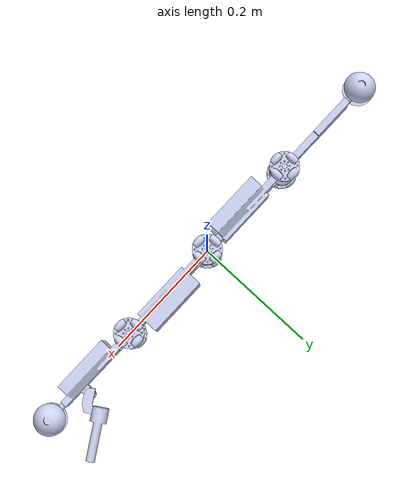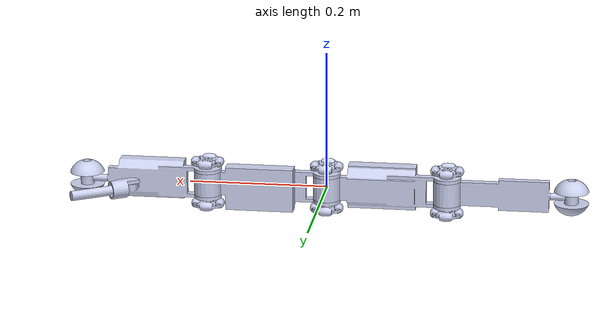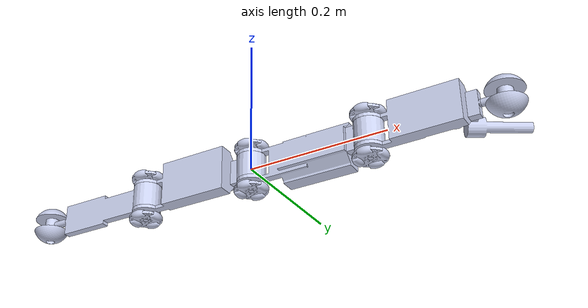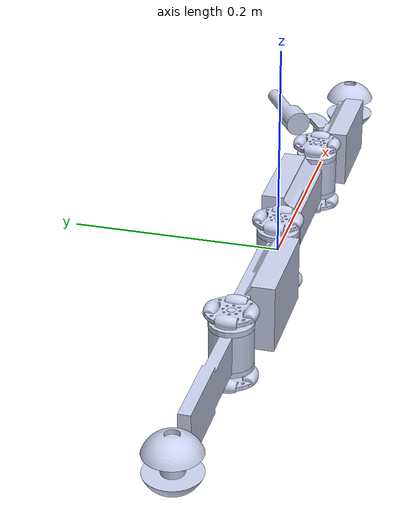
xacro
<?xml version="1.0" encoding="utf-8"?>

<!-- Create base link to allow the robot to be a mobile robot -->
<robot name="pipe_inspect_robot">
<link name="world_floating" />
<joint name="world_to_base" type="fixed">
    <parent link="world_floating"/>
    <child link="base_link"/>
</joint>

<!-- Joint and Link Definitions -->
<link name="base_link">
    <inertial>
      <origin
        xyz="0.101655798451225 0.00728392643516322 4.71844785465692E-16"
        rpy="0 0 0" />
      <mass
        value="0.274571044816181" />
      <inertia
        ixx="0.000101758477556096"
        ixy="1.32195918388367E-05"
        ixz="-5.05535618412219E-19"
        iyy="0.000666033053441437"
        iyz="1.09735772819498E-20"
        izz="0.000631182572044083" />
    </inertial>
    <visual>
      <origin
        xyz="0 0 0"
        rpy="0 0 0" />
      <geometry>
        <mesh
          filename="package://pipe_inspect_robot_description/meshes/base_link.STL" />
      </geometry>
      <material
        name="">
        <color
          rgba="0.792156862745098 0.819607843137255 0.933333333333333 1" />
      </material>
    </visual>
    <!-- Optional Collision for the main body elements of the robot. By defualt collision is disabled to improve simulation performanace -->
  </link>
<link name="MP1">
    <inertial>
      <origin
        xyz="0.0777484739167308 -0.00794790982797029 -0.0175848894474675"
        rpy="0 0 0" />
      <mass
        value="0.171315341336591" />
      <inertia
        ixx="5.64621585156551E-05"
        ixy="6.80940163185208E-06"
        ixz="4.47069853551275E-07"
        iyy="0.000273418314362315"
        iyz="3.37618555743716E-07"
        izz="0.000246017004518593" />
    </inertial>
    <visual>
      <origin
        xyz="0 0 0"
        rpy="0 0 0" />
      <geometry>
        <mesh
          filename="package://pipe_inspect_robot_description/meshes/MP1.STL" />
      </geometry>
      <material
        name="">
        <color
          rgba="0.792156862745098 0.819607843137255 0.933333333333333 1" />
      </material>
    </visual>
    <!-- Optional Collision for the main body elements of the robot. By defualt collision is disabled to improve simulation performanace -->
 </link>
<joint name="MP2_joint"
    type="revolute">
    <dynamics damping="0.1" friction="0.2"/>
    <origin
      xyz="0.17399 0 0.0175000000000005"
      rpy="0 0 0" />
    <parent
      link="base_link" />
    <child
      link="MP1" />
    <axis
      xyz="0 0 1" />
    <limit
    lower="-2.7035"
    upper="0.5235"
      effort="30"
      velocity="100" />
  </joint>
<link name="SL_sensor">
    <inertial>
      <origin
        xyz="0.0433615754910454 0.0165090039453389 0.000329770479719743"
        rpy="0 0 0" />
      <mass
        value="0.0210038963317502" />
      <inertia
        ixx="2.12360512184748E-06"
        ixy="-1.96598624281632E-06"
        ixz="2.36216051191595E-07"
        iyy="1.57911226602422E-05"
        iyz="1.24528451811537E-07"
        izz="1.68535997446025E-05" />
    </inertial>
    <visual>
      <origin
        xyz="0 0 0"
        rpy="0 0 0" />
      <geometry>
        <mesh
          filename="package://pipe_inspect_robot_description/meshes/SL_sensor.STL" />
      </geometry>
      <material
        name="">
        <color
          rgba="0.792156862745098 0.819607843137255 0.933333333333333 1" />
      </material>
    </visual>
    <collision>
      <origin
        xyz="0 0 0"
        rpy="0 0 0" />
      <geometry>
        <mesh
          filename="package://pipe_inspect_robot_description/meshes/SL_sensor.STL" />
      </geometry>
    </collision>
  </link>

<joint name="SL_sensor_joint"
    type="revolute">
    <origin
      xyz="0.10849 0.0189999999999973 -0.0174999999999978"
      rpy="0 0 0" />
    <parent
      link="MP1" />
    <child
      link="SL_sensor" />
    <axis
      xyz="0 0 -1" />
    <limit
      lower="-0.5571"
      upper="-0.5570"
      effort="30"
      velocity="100" />
  </joint>

<link name="SL_camera_link">
    <inertial>
      <origin
        xyz="0 0 0"
        rpy="0 0 0" />
      <mass
        value="0" />
      <inertia
        ixx="0"
        ixy="0"
        ixz="0"
        iyy="0"
        iyz="0"
        izz="0" />
    </inertial>

  </link>

<joint name="SL_camera_frame_joint"
    type="fixed">
    <origin
      xyz="0.09928 0 0" rpy="-1.57 0 0" />
    <parent
      link="SL_sensor" />
    <child
      link="SL_camera_link" />
    <axis
      xyz="0 0 -1" />
    <limit
      lower="0"
      upper="0"
      effort="30"
      velocity="100" />
  </joint>

<link name="EWH1">
    <inertial>
      <origin
        xyz="0.0232211374095972 1.61608702808902E-09 -3.10863587649202E-09"
        rpy="0 0 0" />
      <mass
        value="0.00407017880090339" />
      <inertia
        ixx="1.83498660632129E-07"
        ixy="2.1126505952872E-14"
        ixz="-3.35480393979423E-14"
        iyy="6.1012564324974E-07"
        iyz="-8.36573739243285E-14"
        izz="6.40183617308077E-07" />
    </inertial>
    <visual>
      <origin
        xyz="0 0 0"
        rpy="0 0 0" />
      <geometry>
        <mesh
          filename="package://pipe_inspect_robot_description/meshes/EWH1.STL" />
      </geometry>
      <material
        name="">
        <color
          rgba="0.792156862745098 0.819607843137255 0.933333333333333 1" />
      </material>
    </visual>
    <collision>
      <origin
        xyz="0 0 0"
        rpy="0 0 0" />
      <geometry>
        <mesh
          filename="package://pipe_inspect_robot_description/meshes/EWH1.STL" />
      </geometry>
    </collision>
  </link>
  <joint
    name="EWH1_joint"
    type="continuous">
    <origin
      xyz="0.14699 0 -0.0174999999999977"
      rpy="0 0 0" />
    <parent
      link="MP1" />
    <child
      link="EWH1" />
    <axis
      xyz="1 0 0" />
    <limit
      lower="0"
      upper="0"
      effort="30"
      velocity="100" />
  </joint>
<link name="EW1">
    <inertial>
      <origin
        xyz="0 -5.27355936696949E-16 3.88578058618805E-16"
        rpy="0 0 0" />
      <mass
        value="0.0417280634024084" />
      <inertia
        ixx="1.38688851303676E-05"
        ixy="-1.96455395481344E-21"
        ixz="5.16987882845642E-21"
        iyy="1.38686595539309E-05"
        iyz="1.75421023781982E-20"
        izz="9.0527872571099E-06" />
    </inertial>
    <visual>
      <origin
        xyz="0 0 0"
        rpy="0 0 0" />
      <geometry>
        <mesh
          filename="package://pipe_inspect_robot_description/meshes/EW1.STL" />
      </geometry>
      <material
        name="">
        <color
          rgba="0.792156862745098 0.819607843137255 0.933333333333333 1" />
      </material>
    </visual>
    <collision>
      <origin
        xyz="0 0 0"
        rpy="0 0 0" />
      <geometry>
        <mesh
          filename="package://pipe_inspect_robot_description/meshes/EW1.STL" />
      </geometry>
    </collision>
  </link>
  <joint
    name="EW1_joint"
    type="continuous">
    <origin
      xyz="0.0309999999999999 0 0"
      rpy="0 0 0" />
    <parent
      link="EWH1" />
    <child
      link="EW1" />
    <axis
      xyz="0 0 1" />
    <limit
      lower="0"
      upper="0"
      effort="30"
      velocity="100" />
  </joint>
<link name="W1">
    <inertial>
      <origin
        xyz="9.38711296326056E-05 4.69355648385489E-05 -0.00209387112958981"
        rpy="0 0 0" />
      <mass
        value="0.0108592212539526" />
      <inertia
        ixx="5.10912276387676E-07"
        ixy="7.3362701140111E-18"
        ixz="1.24250714224823E-19"
        iyy="5.10912276324717E-07"
        iyz="-4.99323433478836E-19"
        izz="8.73996961797569E-07" />
    </inertial>
    <visual>
      <origin
        xyz="0 0 0"
        rpy="0 0 0" />
      <geometry>
        <mesh
          filename="package://pipe_inspect_robot_description/meshes/W1.STL" />
      </geometry>
      <material
        name="">
        <color
          rgba="0.792156862745098 0.819607843137255 0.933333333333333 1" />
      </material>
    </visual>
    <collision>
      <origin
        xyz="0 0 0"
        rpy="0 0 0" />
      <geometry>
          <cylinder radius="0.024" length="0.0025"/>
      </geometry>
    </collision>
  </link>
  <joint
    name="W1_joint"
    type="continuous">
    <origin
      xyz="0 0 0.016000000000002"
      rpy="0 0 0" />
    <parent
      link="MP1" />
    <child
      link="W1" />
    <axis
      xyz="0 0 -1" />
    <limit
      lower="0"
      upper="0"
      effort="30"
      velocity="100" />
  </joint>
<link name="W6">
    <inertial>
      <origin
        xyz="-9.38711296326056E-05 4.69355648380632E-05 -0.00190612887041014"
        rpy="0 0 0" />
      <mass
        value="0.0108592212539526" />
      <inertia
        ixx="5.10912276387673E-07"
        ixy="-7.33564150507123E-18"
        ixz="1.24296522980102E-19"
        iyy="5.10912276324713E-07"
        iyz="4.99442395920728E-19"
        izz="8.73996961797563E-07" />
    </inertial>
    <visual>
      <origin
        xyz="0 0 0"
        rpy="0 0 0" />
      <geometry>
        <mesh
          filename="package://pipe_inspect_robot_description/meshes/W6.STL" />
      </geometry>
      <material
        name="">
        <color
          rgba="0.792156862745098 0.819607843137255 0.933333333333333 1" />
      </material>
    </visual>
    <collision>
      <origin
        xyz="0 0 0"
        rpy="0 0 0" />
      <geometry>
        <cylinder radius="0.024" length="0.0025"/>
      </geometry>
    </collision>
  </link>
  <joint
    name="W6_joint"
    type="continuous">
    <origin
      xyz="0 0 -0.0509999999999979"
      rpy="3.14159265358979 0 3.14159265358979" />
    <parent
      link="MP1" />
    <child
      link="W6" />
    <axis
      xyz="0 0 1" />
    <limit
      lower="0"
      upper="0"
      effort="30"
      velocity="100" />
  </joint>
<link name="MP3">
    <inertial>
      <origin
        xyz="-0.0723342015487746 -0.00728392643516204 -0.0175"
        rpy="0 0 0" />
      <mass
        value="0.274571044816181" />
      <inertia
        ixx="0.000101758477556096"
        ixy="-1.32195918388367E-05"
        ixz="3.60166161818222E-19"
        iyy="0.000666033053441437"
        iyz="2.57105545476108E-19"
        izz="0.000631182572044083" />
    </inertial>
    <visual>
      <origin
        xyz="0 0 0"
        rpy="0 0 0" />
      <geometry>
        <mesh
          filename="package://pipe_inspect_robot_description/meshes/MP3.STL" />
      </geometry>
      <material
        name="">
        <color
          rgba="0.792156862745098 0.819607843137255 0.933333333333333 1" />
      </material>
    </visual>
    <!-- Optional Collision for the main body elements of the robot. By defualt collision is disabled to improve simulation performanace -->
  </link>
<joint name="MP3_joint"
    type="revolute">
    <dynamics damping="0.1" friction="0.2"/>
    <origin
      xyz="0 0 0.0175000000000013"
      rpy="0 0 0" />
    <parent
      link="base_link" />
    <child
      link="MP3" />
    <axis
      xyz="0 0 1" />
    <limit
 lower="-2.7035"
    upper="0.5235"
      effort="30"
      velocity="100" />
  </joint>
<link name="W3">
    <inertial>
      <origin
        xyz="9.3871129632691E-05 4.6935564839215E-05 -0.00209387112958986"
        rpy="0 0 0" />
      <mass
        value="0.0108592212539526" />
      <inertia
        ixx="5.10912276387676E-07"
        ixy="7.33697278298772E-18"
        ixz="1.24295828052579E-19"
        iyy="5.10912276324717E-07"
        iyz="-4.99387888538307E-19"
        izz="8.73996961797569E-07" />
    </inertial>
    <visual>
      <origin
        xyz="0 0 0"
        rpy="0 0 0" />
      <geometry>
        <mesh
          filename="package://pipe_inspect_robot_description/meshes/W3.STL" />
      </geometry>
      <material
        name="">
        <color
          rgba="0.792156862745098 0.819607843137255 0.933333333333333 1" />
      </material>
    </visual>
    <collision>
      <origin
        xyz="0 0 0"
        rpy="0 0 0" />
      <geometry>
       <cylinder radius="0.024" length="0.0025"/>
      </geometry>
    </collision>
  </link>
  <joint
    name="W3_joint"
    type="continuous">
    <origin
      xyz="-0.17399 0 0.016"
      rpy="0 0 0" />
    <parent
      link="MP3" />
    <child
      link="W3" />
    <axis
      xyz="0 0 -1" />
    <limit
      lower="0"
      upper="0"
      effort="30"
      velocity="100" />
  </joint>
<link name="W4">
    <inertial>
      <origin
        xyz="-9.38711296327016E-05 4.69355648387432E-05 -0.00190612887041017"
        rpy="0 0 0" />
      <mass
        value="0.0108592212539526" />
      <inertia
        ixx="5.10912276387671E-07"
        ixy="-7.33704174205264E-18"
        ixz="1.24339905393986E-19"
        iyy="5.10912276324711E-07"
        iyz="4.99443255747118E-19"
        izz="8.73996961797559E-07" />
    </inertial>
    <visual>
      <origin
        xyz="0 0 0"
        rpy="0 0 0" />
      <geometry>
        <mesh
          filename="package://pipe_inspect_robot_description/meshes/W4.STL" />
      </geometry>
      <material
        name="">
        <color
          rgba="0.792156862745098 0.819607843137255 0.933333333333333 1" />
      </material>
    </visual>
    <collision>
      <origin
        xyz="0 0 0"
        rpy="0 0 0" />
      <geometry>
        <cylinder radius="0.024" length="0.0025"/>
      </geometry>
    </collision>
  </link>
  <joint
    name="W4_joint"
    type="continuous">
    <origin
      xyz="-0.17399 0 -0.0509999999999999"
      rpy="3.14159265358979 0 3.14159265358979" />
    <parent
      link="MP3" />
    <child
      link="W4" />
    <axis
      xyz="0 0 1" />
    <limit
      lower="0"
      upper="0"
      effort="30"
      velocity="100" />
  </joint>
<link name="MP4">
    <inertial>
      <origin
        xyz="-0.0488978158234846 -1.38777878078145E-17 -0.0175"
        rpy="0 0 0" />
      <mass
        value="0.10067636067877" />
      <inertia
        ixx="1.76122087285153E-05"
        ixy="-1.45316258144295E-20"
        ixz="-8.18125184408226E-20"
        iyy="0.000277343056222159"
        iyz="-2.97797340640973E-24"
        izz="0.000269671024908356" />
    </inertial>
    <visual>
      <origin
        xyz="0 0 0"
        rpy="0 0 0" />
      <geometry>
        <mesh
          filename="package://pipe_inspect_robot_description/meshes/MP4.STL" />
      </geometry>
      <material
        name="">
        <color
          rgba="0.792156862745098 0.819607843137255 0.933333333333333 1" />
      </material>
    </visual>
    <!-- Optional Collision for the main body elements of the robot. By defualt collision is disabled to improve simulation performanace -->
  </link>
<joint name="MP4_joint"
    type="revolute">
    <dynamics damping="0.1" friction="0.2"/>
    <origin
      xyz="-0.17399 0 0"
      rpy="0 0 0" />
    <parent
      link="MP3" />
    <child
      link="MP4" />
    <axis
      xyz="0 0 -1" />
    <limit
 lower="-2.7035"
    upper="0.5235"
      effort="30"
      velocity="100" />
  </joint>
<link name="EWH2">
    <inertial>
      <origin
        xyz="0.0232211374095963 1.616084085998E-09 -3.10863648711468E-09"
        rpy="0 0 0" />
      <mass
        value="0.00407017880090338" />
      <inertia
        ixx="1.83498660632128E-07"
        ixy="2.11265059571803E-14"
        ixz="-3.35480360477528E-14"
        iyy="6.10125643249737E-07"
        iyz="-8.36573739267897E-14"
        izz="6.40183617308075E-07" />
    </inertial>
    <visual>
      <origin
        xyz="0 0 0"
        rpy="0 0 0" />
      <geometry>
        <mesh
          filename="package://pipe_inspect_robot_description/meshes/EWH2.STL" />
      </geometry>
      <material
        name="">
        <color
          rgba="0.792156862745098 0.819607843137255 0.933333333333333 1" />
      </material>
    </visual>
    <collision>
      <origin
        xyz="0 0 0"
        rpy="0 0 0" />
      <geometry>
        <mesh
          filename="package://pipe_inspect_robot_description/meshes/EWH2.STL" />
      </geometry>
    </collision>
  </link>
  <joint
    name="EWH2_joint"
    type="continuous">
    <origin
      xyz="-0.14699 0 -0.0175"
      rpy="3.14159265358979 0 3.14159265358979" />
    <parent
      link="MP4" />
    <child
      link="EWH2" />
    <axis
      xyz="1 0 0" />
    <limit
      lower="0"
      upper="0"
      effort="30"
      velocity="100" />
  </joint>
<link name="EW2">
    <inertial>
      <origin
        xyz="1.08246744900953E-15 -4.9960036108132E-16 8.32667268468867E-16"
        rpy="0 0 0" />
      <mass
        value="0.0417280634024085" />
      <inertia
        ixx="1.38688851303677E-05"
        ixy="2.94525867590112E-36"
        ixz="5.0664812518873E-21"
        iyy="1.38686595539309E-05"
        iyz="-1.86399364871785E-20"
        izz="9.05278725710991E-06" />
    </inertial>
    <visual>
      <origin
        xyz="0 0 0"
        rpy="0 0 0" />
      <geometry>
        <mesh
          filename="package://pipe_inspect_robot_description/meshes/EW2.STL" />
      </geometry>
      <material
        name="">
        <color
          rgba="0.792156862745098 0.819607843137255 0.933333333333333 1" />
      </material>
    </visual>
    <collision>
      <origin
        xyz="0 0 0"
        rpy="0 0 0" />
      <geometry>
        <mesh
          filename="package://pipe_inspect_robot_description/meshes/EW2.STL" />
      </geometry>
    </collision>
  </link>
  <joint
    name="EW2_joint"
    type="continuous">
    <origin
      xyz="0.0309999999999991 0 0"
      rpy="0 0 0" />
    <parent
      link="EWH2" />
    <child
      link="EW2" />
    <axis
      xyz="0 0 1" />
    <limit
      lower="0"
      upper="0"
      effort="30"
      velocity="100" />
  </joint>
<link name="W2">
    <inertial>
      <origin
        xyz="9.38711296325778E-05 4.69355648376746E-05 -0.002093871129589"
        rpy="0 0 0" />
      <mass
        value="0.0108592212539527" />
      <inertia
        ixx="5.10912276387677E-07"
        ixy="7.33454595752855E-18"
        ixz="1.24300397172531E-19"
        iyy="5.10912276324721E-07"
        iyz="-4.99342582969139E-19"
        izz="8.73996961797575E-07" />
    </inertial>
    <visual>
      <origin
        xyz="0 0 0"
        rpy="0 0 0" />
      <geometry>
        <mesh
          filename="package://pipe_inspect_robot_description/meshes/W2.STL" />
      </geometry>
      <material
        name="">
        <color
          rgba="0.792156862745098 0.819607843137255 0.933333333333333 1" />
      </material>
    </visual>
    <collision>
      <origin
        xyz="0 0 0"
        rpy="0 0 0" />
      <geometry>
        <cylinder radius="0.024" length="0.0025"/>
      </geometry>
    </collision>
  </link>
  <joint
    name="W2_joint"
    type="continuous">
    <origin
      xyz="0 0 0.0335000000000005"
      rpy="0 0 0" />
    <parent
      link="base_link" />
    <child
      link="W2" />
    <axis
      xyz="0 0 1" />
    <limit
      lower="0"
      upper="0"
      effort="30"
      velocity="100" />
  </joint>
<link name="W5">
    <inertial>
      <origin
        xyz="-9.38711296326056E-05 4.69355648375913E-05 -0.00190612887041093"
        rpy="0 0 0" />
      <mass
        value="0.0108592212539526" />
      <inertia
        ixx="5.10912276387671E-07"
        ixy="-7.33651595482083E-18"
        ixz="1.24328720142107E-19"
        iyy="5.10912276324713E-07"
        iyz="4.99359065646561E-19"
        izz="8.7399696179756E-07" />
    </inertial>
    <visual>
      <origin
        xyz="0 0 0"
        rpy="0 0 0" />
      <geometry>
        <mesh
          filename="package://pipe_inspect_robot_description/meshes/W5.STL" />
      </geometry>
      <material
        name="">
        <color
          rgba="0.792156862745098 0.819607843137255 0.933333333333333 1" />
      </material>
    </visual>
    <collision>
      <origin
        xyz="0 0 0"
        rpy="0 0 0" />
      <geometry>
        <cylinder radius="0.024" length="0.0025"/>
      </geometry>
    </collision>
  </link>
  <joint
    name="W5_joint"
    type="continuous">
    <origin
      xyz="0 0 -0.0334999999999995"
      rpy="3.14159265358979 0 3.14159265358979" />
    <parent
      link="base_link" />
    <child
      link="W5" />
    <axis
      xyz="0 0 -1" />
    <limit
      lower="0"
      upper="0"
      effort="30"
      velocity="100" />
  </joint>

<!-- Include joint state publisher plugin -->
<gazebo>
	<plugin name="gazebo_ros_joint_state_publisher" filename="libgazebo_ros_joint_state_publisher.so">

	<updateRate>20</updateRate>
	<joint_name>W4_joint</joint_name>
    <joint_name>W1_joint</joint_name>
    <joint_name>W3_joint</joint_name>
    <joint_name>W6_joint</joint_name>
    <joint_name>EWH1_joint</joint_name>
    <joint_name>EWH2_joint</joint_name>
    <joint_name>MP2_joint</joint_name>
    <joint_name>MP3_joint</joint_name>
    <joint_name>MP4_joint</joint_name>
    <joint_name>W2_joint</joint_name>
    <joint_name>W5_joint</joint_name>
    </plugin>
</gazebo>

<!-- Transmission Elements -->
  <transmission name="tran1">
    <type>transmission_interface/SimpleTransmission</type>
    <joint name="W4_joint">
      <hardwareInterface>hardware_interface/VelocityJointInterface</hardwareInterface>
    </joint>
    <actuator name="motor1">
      <hardwareInterface>hardware_interface/VelocityJointInterface</hardwareInterface>
      <mechanicalReduction>1</mechanicalReduction>
    </actuator>
  </transmission>

  <transmission name="tran2">
    <type>transmission_interface/SimpleTransmission</type>
    <joint name="W1_joint">
      <hardwareInterface>hardware_interface/VelocityJointInterface</hardwareInterface>
    </joint>
    <actuator name="motor2">
      <hardwareInterface>hardware_interface/VelocityJointInterface</hardwareInterface>
      <mechanicalReduction>1</mechanicalReduction>
    </actuator>
  </transmission>

  <transmission name="tran3">
    <type>transmission_interface/SimpleTransmission</type>
    <joint name="W3_joint">
      <hardwareInterface>hardware_interface/VelocityJointInterface</hardwareInterface>
    </joint>
    <actuator name="motor3">
      <hardwareInterface>hardware_interface/VelocityJointInterface</hardwareInterface>
      <mechanicalReduction>1</mechanicalReduction>
    </actuator>
  </transmission>

  <transmission name="tran4">
    <type>transmission_interface/SimpleTransmission</type>
    <joint name="W6_joint">
      <hardwareInterface>hardware_interface/VelocityJointInterface</hardwareInterface>
    </joint>
    <actuator name="motor4">
      <hardwareInterface>hardware_interface/VelocityJointInterface</hardwareInterface>
      <mechanicalReduction>1</mechanicalReduction>
    </actuator>
  </transmission>

  <transmission name="tran6">
    <type>transmission_interface/SimpleTransmission</type>
    <joint name="EWH1_joint">
      <hardwareInterface>hardware_interface/VelocityJointInterface</hardwareInterface>
    </joint>
    <actuator name="motor6">
      <hardwareInterface>hardware_interface/VelocityJointInterface</hardwareInterface>
      <mechanicalReduction>1</mechanicalReduction>
    </actuator>
  </transmission>

  <transmission name="tran7">
    <type>transmission_interface/SimpleTransmission</type>
    <joint name="EWH2_joint">
      <hardwareInterface>hardware_interface/VelocityJointInterface</hardwareInterface>
    </joint>
    <actuator name="motor7">
      <hardwareInterface>hardware_interface/VelocityJointInterface</hardwareInterface>
      <mechanicalReduction>1</mechanicalReduction>
    </actuator>
  </transmission>

  <transmission name="tran8">
    <type>transmission_interface/SimpleTransmission</type>
    <joint name="MP2_joint">
      <hardwareInterface>hardware_interface/EffortJointInterface</hardwareInterface>
    </joint>
    <actuator name="motor8">
      <hardwareInterface>hardware_interface/EffortJointInterface</hardwareInterface>
      <mechanicalReduction>1</mechanicalReduction>
    </actuator>
  </transmission>

  <transmission name="tran9">
    <type>transmission_interface/SimpleTransmission</type>
    <joint name="MP3_joint">
      <hardwareInterface>hardware_interface/EffortJointInterface</hardwareInterface>
    </joint>
    <actuator name="motor9">
      <hardwareInterface>hardware_interface/EffortJointInterface</hardwareInterface>
      <mechanicalReduction>1</mechanicalReduction>
    </actuator>
  </transmission>

  <transmission name="tran10">
    <type>transmission_interface/SimpleTransmission</type>
    <joint name="MP4_joint">
      <hardwareInterface>hardware_interface/EffortJointInterface</hardwareInterface>
    </joint>
    <actuator name="motor10">
      <hardwareInterface>hardware_interface/EffortJointInterface</hardwareInterface>
      <mechanicalReduction>1</mechanicalReduction>
    </actuator>
  </transmission>

  <transmission name="tran11">
    <type>transmission_interface/SimpleTransmission</type>
    <joint name="W2_joint">
      <hardwareInterface>hardware_interface/VelocityJointInterface</hardwareInterface>
    </joint>
    <actuator name="motor11">
      <hardwareInterface>hardware_interface/VelocityJointInterface</hardwareInterface>
      <mechanicalReduction>1</mechanicalReduction>
    </actuator>
  </transmission>

  <transmission name="tran12">
    <type>transmission_interface/SimpleTransmission</type>
    <joint name="W5_joint">
      <hardwareInterface>hardware_interface/VelocityJointInterface</hardwareInterface>
    </joint>
    <actuator name="motor12">
      <hardwareInterface>hardware_interface/VelocityJointInterface</hardwareInterface>
      <mechanicalReduction>1</mechanicalReduction>
    </actuator>
  </transmission>

  <!-- Structured Light Sensor -->
  <transmission name="tran13">
    <type>transmission_interface/SimpleTransmission</type>
    <joint name="SL_sensor_joint">
      <hardwareInterface>hardware_interface/PositionJointInterface</hardwareInterface>
    </joint>
    <actuator name="motor13">
      <hardwareInterface>hardware_interface/PositionJointInterface</hardwareInterface>
      <mechanicalReduction>1</mechanicalReduction>
    </actuator>
  </transmission>

<!-- ROS control namespace -->
<gazebo>
  <plugin name="gazebo_ros_control" filename="libgazebo_ros_control.so">
    <robotNamespace>/pipe_inspect_robot</robotNamespace>
  </plugin>
</gazebo>

<!-- Friction adjustments -->
<gazebo reference = "W1">
  <mu1>0.1</mu1>
  <mu2>0.9</mu2>
  <fdir1>0 0 1</fdir1>
</gazebo>

<gazebo reference = "W2">
  <mu1>0.1</mu1>
  <mu2>0.9</mu2>
  <fdir1>0 0 1</fdir1>
</gazebo>

<gazebo reference = "W3">
  <mu1>0.1</mu1>
  <mu2>0.9</mu2>
  <fdir1>0 0 1</fdir1>
</gazebo>

<gazebo reference = "W4">
  <mu1>0.1</mu1>
  <mu2>0.9</mu2>
  <fdir1>0 0 1</fdir1>
</gazebo>

<gazebo reference = "W5">
  <mu1>0.1</mu1>
  <mu2>0.9</mu2>
  <fdir1>0 0 1</fdir1>
</gazebo>

<gazebo reference = "W6">
  <mu1>0.1</mu1>
  <mu2>0.9</mu2>
  <fdir1>0 0 1</fdir1>
</gazebo>

<!-- Optional Damping Adjustments -->

<!-- IMU sensor definition. This publishes imu data at 20Hz -->
  <gazebo reference="SL_sensor">
    <gravity>true</gravity>
    <sensor name="imu_sensor" type="imu">
      <always_on>true</always_on>
      <update_rate>20</update_rate>
      <visualize>true</visualize>
      <topic>/imu</topic>
      <pose>0 0 0 0 0 0</pose>

<plugin filename="libgazebo_ros_imu_sensor.so" name="imu_plugin">
	<robotNamespace>/pipe_inspect_robot</robotNamespace>
        <topicName>imu</topicName>
        <bodyName>imu_link</bodyName>
        <updateRateHZ>20.0</updateRateHZ>
        <gaussianNoise>0.0</gaussianNoise>
        <xyzOffset>0 0 0</xyzOffset>
        <rpyOffset>0 0 0</rpyOffset>
        <frameName>imu_link</frameName>
        <initialOrientationAsReference>false</initialOrientationAsReference>
    </plugin>
</sensor>
  </gazebo>

  <!-- Camera and structured light sensor plugin -->
  <gazebo reference="SL_camera_link">
    <sensor name="camera" type="depth">
        <update_rate>20</update_rate>
        <camera>
          <horizontal_fov>1.5089604</horizontal_fov>
          <image>
          <!-- Camera resolution here -->
            <width>500</width>
            <height>500</height>
            <format>R8G8B8</format>
          </image>
          <clip>
            <near>0.005</near>
            <far>3</far>
          </clip>
        </camera>

        <plugin name="camera_plugin" filename="libgazebo_ros_openni_kinect.so">
	        <robotNamespace>/pipe_inspect_robot</robotNamespace>
          <baseline>0.2</baseline>
          <alwaysOn>true</alwaysOn>
          <updateRate>0.0</updateRate>
          <cameraName>camera_ir</cameraName>
          <imageTopicName>/camera/color/image_raw</imageTopicName>
          <cameraInfoTopicName>/camera/color/camera_info</cameraInfoTopicName>
          <depthImageTopicName>/camera/depth/image_raw</depthImageTopicName>
          <depthImageCameraInfoTopicName>/camera/depth/camera_info</depthImageCameraInfoTopicName>
          <pointCloudTopicName>/camera/depth/points</pointCloudTopicName>
          <frameName>SL_camera_link</frameName>
          <pointCloudCutoff>0.000001</pointCloudCutoff>
          <pointCloudCutoffMax>3.0</pointCloudCutoffMax>
          <distortionK1>0</distortionK1>
          <distortionK2>0</distortionK2>
          <distortionK3>0</distortionK3>
          <distortionT1>0</distortionT1>
          <distortionT2>0</distortionT2>
          <CxPrime>0</CxPrime>
          <Cx>0</Cx>
          <Cy>0</Cy>
          <focalLength>265.957545</focalLength>
          <hackBaseline>0</hackBaseline>
        </plugin>

      </sensor>
  </gazebo>

</robot>
